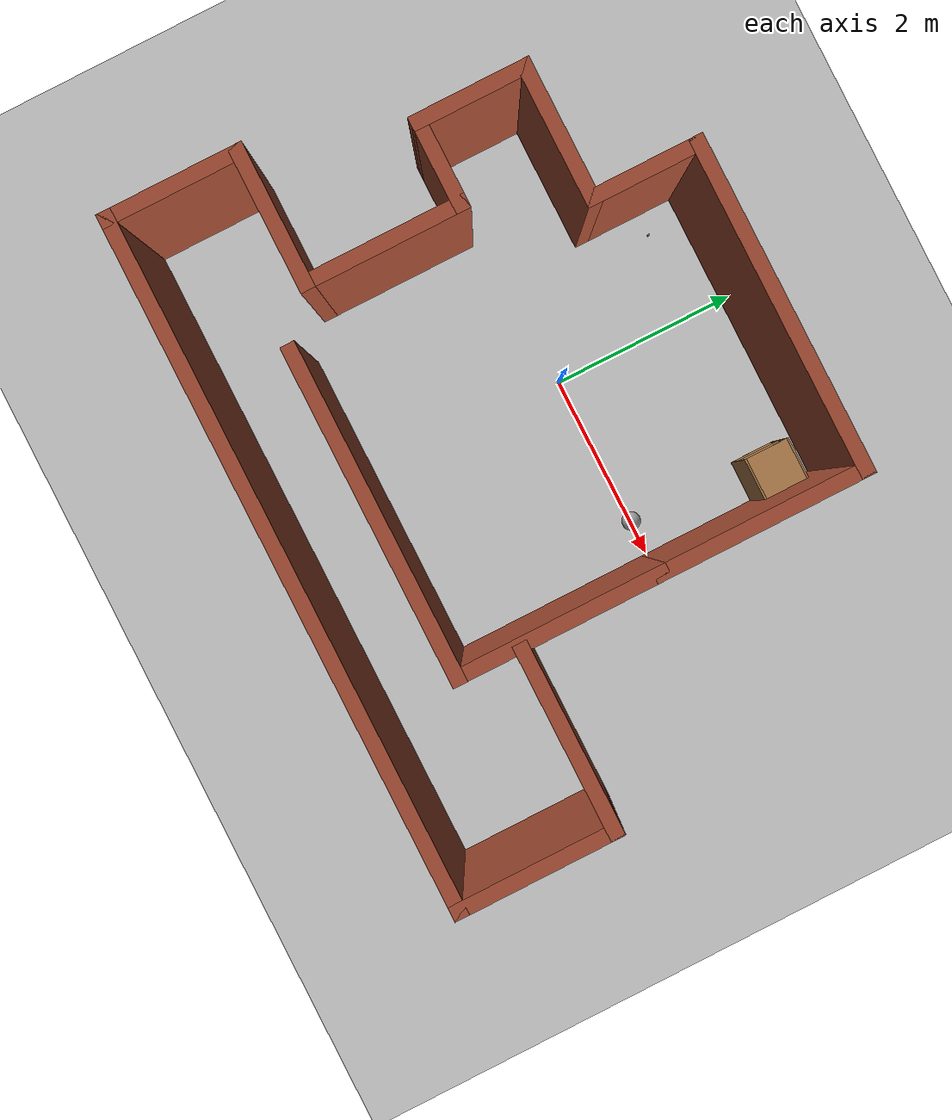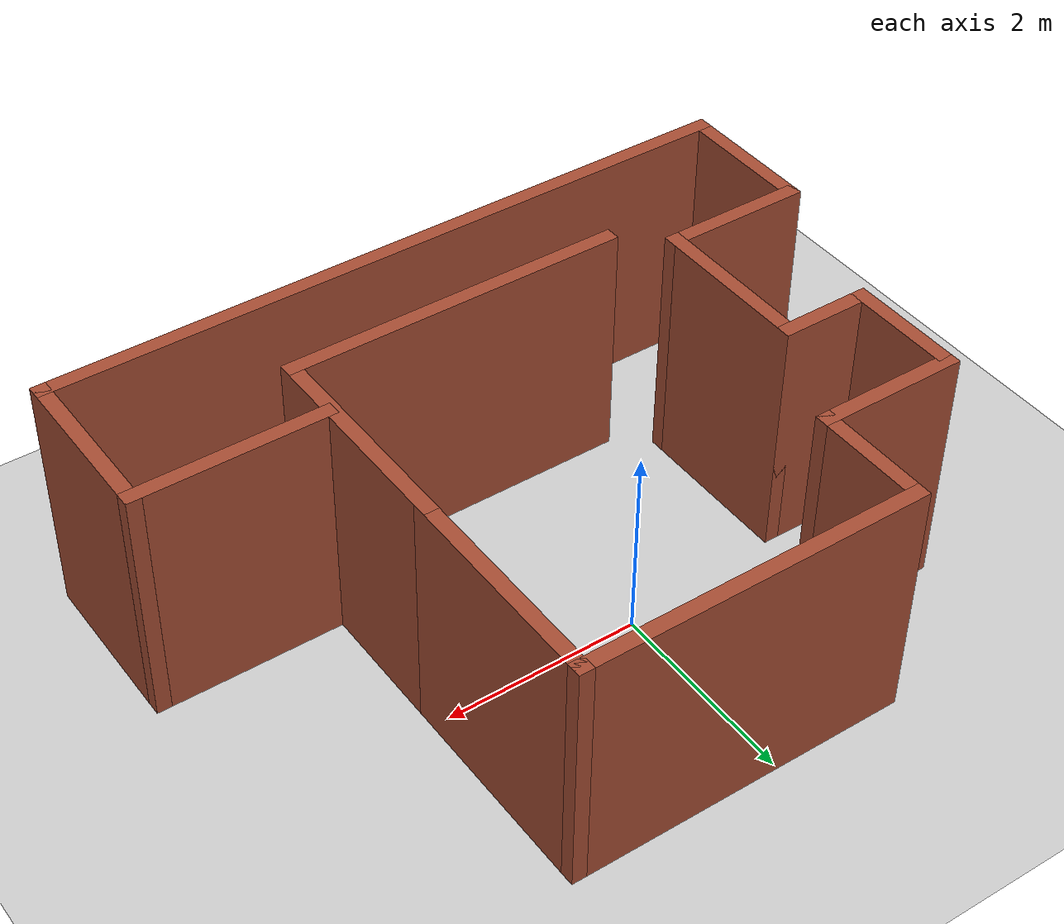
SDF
<sdf version="1.6">
 <world name="default">
  <light name="sun" type="directional">
   <pose>0 0 10 0 -0 0</pose>
   <diffuse>0.8 0.8 0.8 1</diffuse>
   <specular>0.2 0.2 0.2 1</specular>
   <attenuation>
    <range>1000</range>
    <constant>0.9</constant>
    <linear>0.01</linear>
    <quadratic>0.001</quadratic>
   </attenuation>
   <direction>-0.5 0.1 -0.9</direction>
  </light>
  <model name="ground_plane">
   <static>1</static>
   <link name="link">
    <collision name="collision">
     <geometry><plane><normal>0 0 1</normal><size>100 100</size></plane></geometry>
     <surface>
      <contact><collide_bitmask>65535</collide_bitmask></contact>
      <friction><ode><mu>100</mu><mu2>50</mu2></ode></friction>
     </surface>
    </collision>
    <visual name="visual">
     <cast_shadows>0</cast_shadows>
     <geometry><plane><normal>0 0 1</normal><size>100 100</size></plane></geometry>
     <material>
      <script><uri>file://media/materials/scripts/gazebo.material</uri><name>Gazebo/Grey</name></script>
     </material>
    </visual>
   </link>
  </model>
  <gravity>0 0 -9.8</gravity>
  <magnetic_field>6e-06 2.3e-05 -4.2e-05</magnetic_field>
  <atmosphere type="adiabatic"/>
  <physics name="default_physics" default="0" type="ode">
   <max_step_size>0.001</max_step_size>
   <real_time_factor>1</real_time_factor>
   <real_time_update_rate>1000</real_time_update_rate>
  </physics>
  <scene><ambient>0.4 0.4 0.4 1</ambient><background>0.7 0.7 0.7 1</background><shadows>1</shadows></scene>
  <spherical_coordinates>
   <surface_model>EARTH_WGS84</surface_model>
   <latitude_deg>0</latitude_deg>
   <longitude_deg>0</longitude_deg>
   <elevation>0</elevation>
   <heading_deg>0</heading_deg>
  </spherical_coordinates>
  <model name="project2">
   <pose>0.44 -0.595 0 0 -0 0</pose>
   <link name="Wall_0">
    <collision name="Wall_0_Collision">
     <geometry><box><size>3.5 0.15 2.5</size></box></geometry>
     <pose>0 0 1.25 0 -0 0</pose>
    </collision>
    <visual name="Wall_0_Visual">
     <pose>0 0 1.25 0 -0 0</pose>
     <geometry><box><size>3.5 0.15 2.5</size></box></geometry>
     <material>
      <script><uri>file://media/materials/scripts/gazebo.material</uri><name>Gazebo/Bricks</name></script>
      <ambient>1 1 1 1</ambient>
     </material>
     <meta><layer>0</layer></meta>
    </visual>
    <pose>-0.025 -1.625 0 0 -0 0</pose>
   </link>
   <link name="Wall_10">
    <collision name="Wall_10_Collision">
     <geometry><box><size>1.5 0.15 2.5</size></box></geometry>
     <pose>0 0 1.25 0 -0 0</pose>
    </collision>
    <visual name="Wall_10_Visual">
     <pose>0 0 1.25 0 -0 0</pose>
     <geometry><box><size>1.5 0.15 2.5</size></box></geometry>
     <material>
      <script><uri>file://media/materials/scripts/gazebo.material</uri><name>Gazebo/Bricks</name></script>
      <ambient>1 1 1 1</ambient>
     </material>
     <meta><layer>0</layer></meta>
    </visual>
    <pose>-2.875 -1.225 0 0 -0 3.14159</pose>
   </link>
   <link name="Wall_11">
    <collision name="Wall_11_Collision">
     <geometry><box><size>1.5 0.15 2.5</size></box></geometry>
     <pose>0 0 1.25 0 -0 0</pose>
    </collision>
    <visual name="Wall_11_Visual">
     <pose>0 0 1.25 0 -0 0</pose>
     <geometry><box><size>1.5 0.15 2.5</size></box></geometry>
     <material>
      <script><uri>file://media/materials/scripts/gazebo.material</uri><name>Gazebo/Bricks</name></script>
      <ambient>1 1 1 1</ambient>
     </material>
     <meta><layer>0</layer></meta>
    </visual>
    <pose>-3.55 -1.9 0 0 0 -1.5708</pose>
   </link>
   <link name="Wall_12">
    <collision name="Wall_12_Collision">
     <geometry><box><size>7.25 0.15 2.5</size></box></geometry>
     <pose>0 0 1.25 0 -0 0</pose>
    </collision>
    <visual name="Wall_12_Visual">
     <pose>0 0 1.25 0 -0 0</pose>
     <geometry><box><size>7.25 0.15 2.5</size></box></geometry>
     <material>
      <script><uri>file://media/materials/scripts/gazebo.material</uri><name>Gazebo/Bricks</name></script>
      <ambient>1 1 1 1</ambient>
     </material>
     <meta><layer>0</layer></meta>
    </visual>
    <pose>0 -2.575 0 0 -0 0</pose>
   </link>
   <link name="Wall_13">
    <collision name="Wall_13_Collision">
     <geometry><box><size>1.75 0.15 2.5</size></box></geometry>
     <pose>0 0 1.25 0 -0 0</pose>
    </collision>
    <visual name="Wall_13_Visual">
     <pose>0 0 1.25 0 -0 0</pose>
     <geometry><box><size>1.75 0.15 2.5</size></box></geometry>
     <material>
      <script><uri>file://media/materials/scripts/gazebo.material</uri><name>Gazebo/Bricks</name></script>
      <ambient>1 1 1 1</ambient>
     </material>
     <meta><layer>0</layer></meta>
    </visual>
    <pose>3.55 -1.775 0 0 -0 1.5708</pose>
   </link>
   <link name="Wall_14">
    <collision name="Wall_14_Collision">
     <geometry><box><size>2 0.15 2.5</size></box></geometry>
     <pose>0 0 1.25 0 -0 0</pose>
    </collision>
    <visual name="Wall_14_Visual">
     <pose>0 0 1.25 0 -0 0</pose>
     <geometry><box><size>2 0.15 2.5</size></box></geometry>
     <material>
      <script><uri>file://media/materials/scripts/gazebo.material</uri><name>Gazebo/Bricks</name></script>
      <ambient>1 1 1 1</ambient>
     </material>
     <meta><layer>0</layer></meta>
    </visual>
    <pose>2.625 -0.975 0 0 -0 3.14159</pose>
   </link>
   <link name="Wall_2">
    <collision name="Wall_2_Collision">
     <geometry><box><size>2.25 0.15 2.5</size></box></geometry>
     <pose>0 0 1.25 0 -0 0</pose>
    </collision>
    <visual name="Wall_2_Visual">
     <pose>0 0 1.25 0 -0 0</pose>
     <geometry><box><size>2.25 0.15 2.5</size></box></geometry>
     <material>
      <script><uri>file://media/materials/scripts/gazebo.material</uri><name>Gazebo/Bricks</name></script>
      <ambient>1 1 1 1</ambient>
     </material>
     <meta><layer>0</layer></meta>
    </visual>
    <pose>1.65 -0.575 0 0 -0 1.5708</pose>
   </link>
   <link name="Wall_3">
    <collision name="Wall_3_Collision">
     <geometry><box><size>2.25 0.15 2.5</size></box></geometry>
     <pose>0 0 1.25 0 -0 0</pose>
    </collision>
    <visual name="Wall_3_Visual">
     <pose>0 0 1.25 0 -0 0</pose>
     <geometry><box><size>2.25 0.15 2.5</size></box></geometry>
     <material>
      <script><uri>file://media/materials/scripts/gazebo.material</uri><name>Gazebo/Bricks</name></script>
      <ambient>1 1 1 1</ambient>
     </material>
     <meta><layer>0</layer></meta>
    </visual>
    <pose>1.65 1.525 0 0 -0 1.5708</pose>
   </link>
   <link name="Wall_4">
    <collision name="Wall_4_Collision">
     <geometry><box><size>3.5 0.15 2.5</size></box></geometry>
     <pose>0 0 1.25 0 -0 0</pose>
    </collision>
    <visual name="Wall_4_Visual">
     <pose>0 0 1.25 0 -0 0</pose>
     <geometry><box><size>3.5 0.15 2.5</size></box></geometry>
     <material>
      <script><uri>file://media/materials/scripts/gazebo.material</uri><name>Gazebo/Bricks</name></script>
      <ambient>1 1 1 1</ambient>
     </material>
     <meta><layer>0</layer></meta>
    </visual>
    <pose>-0.025 2.575 0 0 -0 3.14159</pose>
   </link>
   <link name="Wall_5">
    <collision name="Wall_5_Collision">
     <geometry><box><size>1.25 0.15 2.5</size></box></geometry>
     <pose>0 0 1.25 0 -0 0</pose>
    </collision>
    <visual name="Wall_5_Visual">
     <pose>0 0 1.25 0 -0 0</pose>
     <geometry><box><size>1.25 0.15 2.5</size></box></geometry>
     <material>
      <script><uri>file://media/materials/scripts/gazebo.material</uri><name>Gazebo/Bricks</name></script>
      <ambient>1 1 1 1</ambient>
     </material>
     <meta><layer>0</layer></meta>
    </visual>
    <pose>-1.7 2.025 0 0 0 -1.5708</pose>
   </link>
   <link name="Wall_6">
    <collision name="Wall_6_Collision">
     <geometry><box><size>1.5 0.15 2.5</size></box></geometry>
     <pose>0 0 1.25 0 -0 0</pose>
    </collision>
    <visual name="Wall_6_Visual">
     <pose>0 0 1.25 0 -0 0</pose>
     <geometry><box><size>1.5 0.15 2.5</size></box></geometry>
     <material>
      <script><uri>file://media/materials/scripts/gazebo.material</uri><name>Gazebo/Bricks</name></script>
      <ambient>1 1 1 1</ambient>
     </material>
     <meta><layer>0</layer></meta>
    </visual>
    <pose>-2.375 1.475 0 0 -0 3.14159</pose>
   </link>
   <link name="Wall_7">
    <collision name="Wall_7_Collision">
     <geometry><box><size>1.25 0.15 2.5</size></box></geometry>
     <pose>0 0 1.25 0 -0 0</pose>
    </collision>
    <visual name="Wall_7_Visual">
     <pose>0 0 1.25 0 -0 0</pose>
     <geometry><box><size>1.25 0.15 2.5</size></box></geometry>
     <material>
      <script><uri>file://media/materials/scripts/gazebo.material</uri><name>Gazebo/Bricks</name></script>
      <ambient>1 1 1 1</ambient>
     </material>
     <meta><layer>0</layer></meta>
    </visual>
    <pose>-3.05 0.925 0 0 0 -1.5708</pose>
   </link>
   <link name="Wall_8">
    <collision name="Wall_8_Collision">
     <geometry><box><size>1 0.15 2.5</size></box></geometry>
     <pose>0 0 1.25 0 -0 0</pose>
    </collision>
    <visual name="Wall_8_Visual">
     <pose>0 0 1.25 0 -0 0</pose>
     <geometry><box><size>1 0.15 2.5</size></box></geometry>
     <material>
      <script><uri>file://media/materials/scripts/gazebo.material</uri><name>Gazebo/Bricks</name></script>
      <ambient>1 1 1 1</ambient>
     </material>
     <meta><layer>0</layer></meta>
    </visual>
    <pose>-2.625 0.375 0 0 -0 0</pose>
   </link>
   <link name="Wall_9">
    <collision name="Wall_9_Collision">
     <geometry><box><size>1.75 0.15 2.5</size></box></geometry>
     <pose>0 0 1.25 0 -0 0</pose>
    </collision>
    <visual name="Wall_9_Visual">
     <pose>0 0 1.25 0 -0 0</pose>
     <geometry><box><size>1.75 0.15 2.5</size></box></geometry>
     <material>
      <script><uri>file://media/materials/scripts/gazebo.material</uri><name>Gazebo/Bricks</name></script>
      <ambient>1 1 1 1</ambient>
     </material>
     <meta><layer>0</layer></meta>
    </visual>
    <pose>-2.2 -0.425 0 0 0 -1.5708</pose>
   </link>
   <static>1</static>
  </model>
  <model name="wooden_peg">
   <link name="link">
    <pose>0 0 0.04 0 -0 0</pose>
    <inertial>
     <mass>0.0175</mass>
     <inertia>
      <ixx>9.74923e-06</ixx>
      <ixy>0</ixy>
      <ixz>0</ixz>
      <iyy>9.74923e-06</iyy>
      <iyz>0</iyz>
      <izz>8.31797e-07</izz>
     </inertia>
    </inertial>
    <collision name="collision">
     <geometry><cylinder><radius>0.00975</radius><length>0.08</length></cylinder></geometry>
     <surface>
      <contact>
       <poissons_ratio>0.347</poissons_ratio>
       <elastic_modulus>8.8e+09</elastic_modulus>
       <ode><kp>100000</kp><kd>100</kd><max_vel>100</max_vel><min_depth>0.001</min_depth></ode>
      </contact>
      <friction>
       <torsional>
        <coefficient>1</coefficient>
        <use_patch_radius>0</use_patch_radius>
        <surface_radius>0.01</surface_radius>
       </torsional>
      </friction>
     </surface>
    </collision>
    <visual name="visual">
     <geometry><cylinder><radius>0.00975</radius><length>0.08</length></cylinder></geometry>
     <material>
      <script><uri>file://media/materials/scripts/gazebo.material</uri><name>Gazebo/Wood</name></script>
     </material>
    </visual>
   </link>
   <pose>-0.949562 1.54072 -0.001 0 -0 0</pose>
  </model>
  <model name="cabinet">
   <static>1</static>
   <link name="cabinet_bottom_plate">
    <inertial>
     <pose>0 0 -1 0 -0 0</pose>
     <inertia><ixx>2.05</ixx><ixy>0</ixy><ixz>0</ixz><iyy>2.05</iyy><iyz>0</iyz><izz>2.05</izz></inertia>
     <mass>25</mass>
    </inertial>
    <collision name="cabinet_bottom_plate_geom">
     <pose>0 0 0.01 0 -0 0</pose>
     <geometry><box><size>0.45 0.45 0.02</size></box></geometry>
    </collision>
    <visual name="cabinet_bottom_plate_geom_visual">
     <pose>0 0 0.01 0 -0 0</pose>
     <geometry><box><size>0.45 0.45 0.02</size></box></geometry>
     <material>
      <script><uri>file://media/materials/scripts/gazebo.material</uri><name>Gazebo/Wood</name></script>
     </material>
    </visual>
    <collision name="cabinet_bottom_plate_geom_cabinet_back_plate">
     <pose>0.235 0 0.51 0 -0 0</pose>
     <geometry><box><size>0.02 0.45 1.02</size></box></geometry>
    </collision>
    <visual name="cabinet_bottom_plate_geom_cabinet_back_plate_visual">
     <pose>0.235 0 0.51 0 -0 0</pose>
     <geometry><box><size>0.02 0.45 1.02</size></box></geometry>
     <material>
      <script><uri>file://media/materials/scripts/gazebo.material</uri><name>Gazebo/Wood</name></script>
     </material>
    </visual>
    <collision name="cabinet_bottom_plate_geom_cabinet_left_plate">
     <pose>0 0.235 0.51 0 -0 0</pose>
     <geometry><box><size>0.45 0.02 1.02</size></box></geometry>
    </collision>
    <visual name="cabinet_bottom_plate_geom_cabinet_left_plate_visual">
     <pose>0 0.235 0.51 0 -0 0</pose>
     <geometry><box><size>0.45 0.02 1.02</size></box></geometry>
     <material>
      <script><uri>file://media/materials/scripts/gazebo.material</uri><name>Gazebo/Wood</name></script>
     </material>
    </visual>
    <collision name="cabinet_bottom_plate_geom_cabinet_middle_plate">
     <pose>0 0 0.51 0 -0 0</pose>
     <geometry><box><size>0.45 0.45 0.02</size></box></geometry>
    </collision>
    <visual name="cabinet_bottom_plate_geom_cabinet_middle_plate_visual">
     <pose>0 0 0.51 0 -0 0</pose>
     <geometry><box><size>0.45 0.45 0.02</size></box></geometry>
     <material>
      <script><uri>file://media/materials/scripts/gazebo.material</uri><name>Gazebo/Wood</name></script>
     </material>
    </visual>
    <collision name="cabinet_bottom_plate_geom_cabinet_right_plate">
     <pose>0 -0.235 0.51 0 -0 0</pose>
     <geometry><box><size>0.45 0.02 1.02</size></box></geometry>
    </collision>
    <visual name="cabinet_bottom_plate_geom_cabinet_right_plate_visual">
     <pose>0 -0.235 0.51 0 -0 0</pose>
     <geometry><box><size>0.45 0.02 1.02</size></box></geometry>
     <material>
      <script><uri>file://media/materials/scripts/gazebo.material</uri><name>Gazebo/Wood</name></script>
     </material>
    </visual>
    <collision name="cabinet_bottom_plate_geom_cabinet_top_plate">
     <pose>0 0 1.01 0 -0 0</pose>
     <geometry><box><size>0.45 0.45 0.02</size></box></geometry>
    </collision>
    <visual name="cabinet_bottom_plate_geom_cabinet_top_plate_visual">
     <pose>0 0 1.01 0 -0 0</pose>
     <geometry><box><size>0.45 0.45 0.02</size></box></geometry>
     <material>
      <script><uri>file://media/materials/scripts/gazebo.material</uri><name>Gazebo/Wood</name></script>
     </material>
    </visual>
   </link>
   <pose>1.79368 1.47616 0 0 -0 0</pose>
  </model>
  <model name="white_ball">
   <link name="link_0">
    <inertial>
     <mass>1</mass>
     <inertia><ixx>0.1</ixx><ixy>0</ixy><ixz>0</ixz><iyy>0.1</iyy><iyz>0</iyz><izz>0.1</izz></inertia>
    </inertial>
    <visual name="visual">
     <geometry><sphere><radius>0.1</radius></sphere></geometry>
     <material>
      <lighting>1</lighting>
      <script><uri>file://media/materials/scripts/gazebo.material</uri><name>Gazebo/Grey</name></script>
      <shader type="pixel"><normal_map>__default__</normal_map></shader>
      <ambient>0.3 0.3 0.3 1</ambient>
      <diffuse>0.7 0.7 0.7 1</diffuse>
      <specular>0.01 0.01 0.01 1</specular>
      <emissive>1 1 1 1</emissive>
     </material>
    </visual>
    <collision name="collision">
     <geometry><sphere><radius>0.1</radius></sphere></geometry>
     <surface>
      <friction>
       <ode><mu>1</mu><mu2>1</mu2><fdir1>0 0 0</fdir1><slip1>0</slip1><slip2>0</slip2></ode>
       <torsional>
        <coefficient>1</coefficient>
        <patch_radius>0</patch_radius>
        <surface_radius>0</surface_radius>
        <use_patch_radius>1</use_patch_radius>
        <ode><slip>0</slip></ode>
       </torsional>
      </friction>
      <bounce><restitution_coefficient>0</restitution_coefficient><threshold>1e+06</threshold></bounce>
      <contact>
       <collide_without_contact>0</collide_without_contact>
       <collide_without_contact_bitmask>1</collide_without_contact_bitmask>
       <collide_bitmask>1</collide_bitmask>
       <ode>
        <soft_cfm>0</soft_cfm>
        <soft_erp>0.2</soft_erp>
        <kp>1e+13</kp>
        <kd>1</kd>
        <max_vel>0.01</max_vel>
        <min_depth>0</min_depth>
       </ode>
       <bullet>
        <split_impulse>1</split_impulse>
        <split_impulse_penetration_threshold>-0.01</split_impulse_penetration_threshold>
        <soft_cfm>0</soft_cfm>
        <soft_erp>0.2</soft_erp>
        <kp>1e+13</kp>
        <kd>1</kd>
       </bullet>
      </contact>
     </surface>
    </collision>
   </link>
   <static>0</static>
   <pose>1.63329 0.013967 0.1 0 -0 0</pose>
  </model>
 </world>
</sdf>
